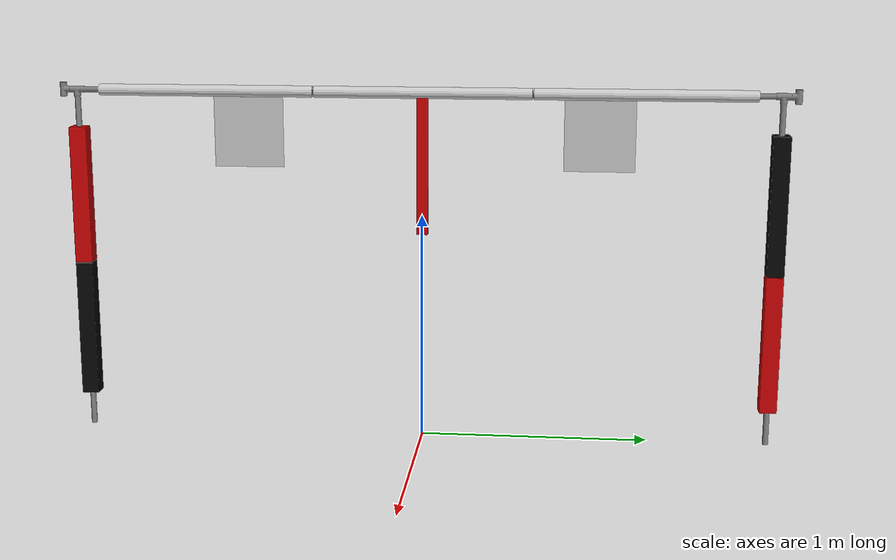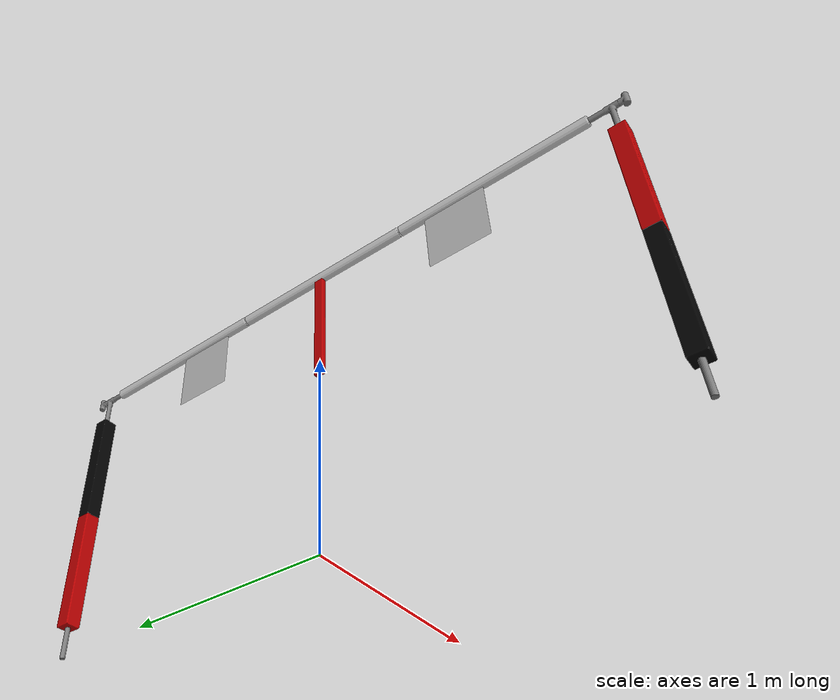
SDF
<?xml version="1.0"?>
<sdf version="1.6">
	<model name="robosub_gate">
		<static>true</static>
    	<pose>0 0 0 0 0 0</pose>
		<link name="robosub_gate">
			<pose>0 0 0 0 0 0</pose>
			<collision name="robosub_gate_col">
				<pose>0 0 0 0 0 0</pose>
				<geometry>
					<mesh>
						<uri>model://robosub_gate/meshes/gate.dae</uri>
					</mesh>
				</geometry>
			</collision>
			<visual name="robosub_gate_vis">
				<pose>0 0 0 0 0 0</pose>
				<geometry>
					<mesh>
						<uri>model://robosub_gate/meshes/gate.dae</uri>
					</mesh>
				</geometry>
			</visual>

		</link>
	</model>
</sdf>
